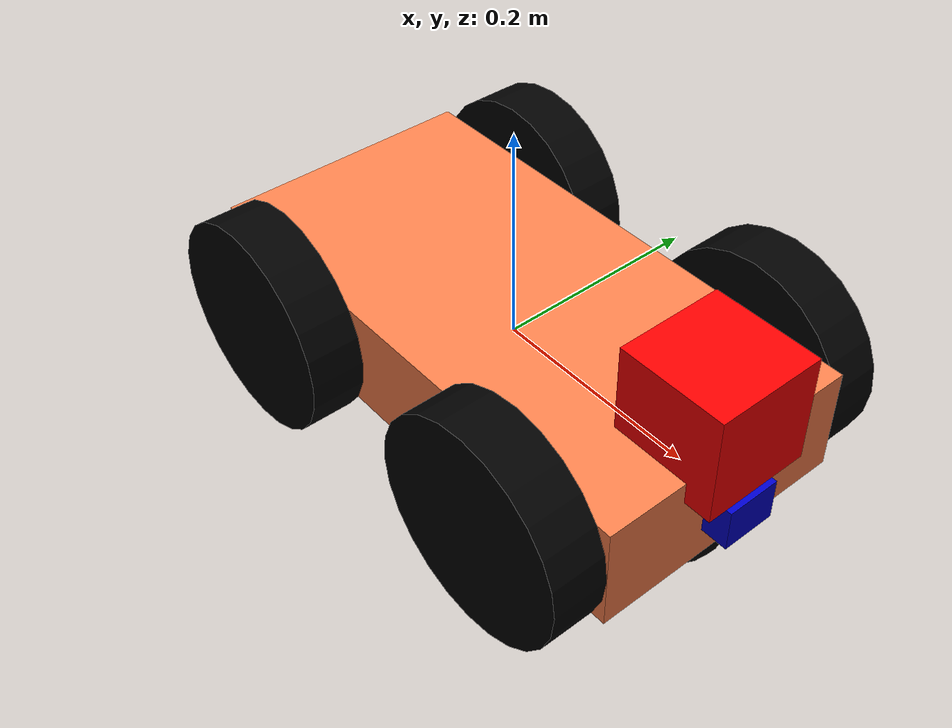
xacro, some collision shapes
<?xml version="1.0" ?>
<robot name="Robo4" xmlns:xacro="http://www.ros.org/wiki/xacro">

  <material name="blue">
    <color rgba="0 0 0.8 1"/>
  </material>
  <material name="black">
    <color rgba="0 0 0 1"/>
  </material>
  <material name="orange">
    <color rgba="1 0.5 0.3 1"/>
  </material>

  <xacro:include filename="$(find my_robot)/urdf/my_robot.gazebo" />

  <link name="robot_footprint"/>

<joint name="robot_footprint_chassis" type="fixed">
  <origin xyz="0 0 0" rpy="0 0 0" />
  <parent link="robot_footprint"/>
  <child link="chassis"/>
</joint>

  <link name="chassis">
    <pose>0 0 0.2 0 0 0</pose>
    <inertial>
      <mass value="15"/>
      <origin rpy="0 0 0" xyz="0 0 0"/>
      <inertia
       ixx="0.1" ixy="0" ixz="0"
       iyy="0.1" iyz="0"
       izz="0.1"/>
    </inertial>

    <collision name="collision">
      <origin rpy="0 0 0" xyz="0 0 0"/>
      <geometry>
        <box size="0.50 0.25 0.1"/>
      </geometry>
    </collision>

    <visual>
      <origin rpy="0 0 0" xyz="0 0 0"/>
      <geometry>
        <box size="0.50 0.25 0.1"/>
      </geometry>
      <material name="orange"/>
    </visual>

  </link>
  <gazebo reference="chassis">
      <material>Gazebo/Orange</material>
  </gazebo>

<joint name="chassis_front_caster" type="fixed">
  <origin xyz="0 0 0" rpy="0 0 0" />
  <parent link="chassis"/>
  <child link="front_caster"/>
</joint>

<link name="front_caster">
    <inertial>
      <mass value="2"/>
      <origin xyz="0.20 0 -0.05" rpy=" 0 0 0"/>
      <inertia
       ixx="0.01" ixy="0" ixz="0"
       iyy="0.01" iyz="0"
       izz="0.01"/>
    </inertial>
    <collision name='front_caster_collision'>
      <origin xyz="0.20 0 -0.05" rpy=" 0 0 0"/>
      <geometry>
        <sphere radius="0.0499"/>
      </geometry>
    </collision>

    <visual name='front_caster_visual'>
      <origin xyz="0.20 0 -0.05" rpy=" 0 0 0"/>
      <geometry>
        <sphere radius="0.05"/>
      </geometry>
      <material name="black"/>
    </visual>
</link>

<joint name="chassis_back_caster" type="fixed">
  <origin xyz="0 0 0" rpy="0 0 0" />
  <parent link="chassis"/>
  <child link="back_caster"/>
</joint>

<link name="back_caster">
    <inertial>
      <mass value="2"/>
      <origin xyz="-0.20 0 -0.05" rpy=" 0 0 0"/>
      <inertia
       ixx="0.01" ixy="0" ixz="0"
       iyy="0.01" iyz="0"
       izz="0.01"/>
    </inertial>

    <collision name='back_caster_collision'>
      <origin xyz="-0.20 0 -0.05" rpy=" 0 0 0"/>
      <geometry>
        <sphere radius="0.0499"/>
      </geometry>
    </collision>

    <visual name='back_caster_visual'>
      <origin xyz="-0.20 0 -0.05" rpy=" 0 0 0"/>
      <geometry>
        <sphere radius="0.05"/>
      </geometry>
      <material name="black"/>
    </visual>

</link>

  <xacro:property name="wheel_damping" value="0.5" />
  <xacro:property name="wheel_friction" value="0.5" />

  <joint name="left_front" type="continuous">
    <parent link="chassis"/>
    <child link="left_wheel"/>
    <origin xyz="0.15 0.15 0.0" rpy="0 0 0"/>
    <axis xyz="0 1 0"/>
    <limit effort="10000" velocity="1000"/>
    <dynamics damping="${wheel_damping}" friction="${wheel_friction}"/>
  </joint>

  <joint name="right_front" type="continuous">
    <parent link="chassis"/>
    <child link="right_wheel"/>
    <origin xyz="0.15 -0.15 0.0" rpy="0 0 0"/>
    <axis xyz="0 1 0"/>
    <limit effort="10000" velocity="1000"/>
    <dynamics damping="${wheel_damping}" friction="${wheel_friction}"/>
  </joint>

  <joint name="left_rear" type="continuous">
    <parent link="chassis"/>
    <child link="left_rear"/>
    <origin xyz="-0.15 0.15 0.0" rpy="0 0 0"/>
    <axis xyz="0 1 0"/>
    <limit effort="10000" velocity="1000"/>
    <dynamics damping="${wheel_damping}" friction="${wheel_friction}"/>
  </joint>

  <joint name="right_rear" type="continuous">
    <parent link="chassis"/>
    <child link="right_rear"/>
    <origin xyz="-0.15 -0.15 0.0" rpy="0 0 0"/>
    <axis xyz="0 1 0"/>
    <limit effort="10000" velocity="1000"/>
    <dynamics damping="${wheel_damping}" friction="${wheel_friction}"/>
  </joint>

  <xacro:property name="wheel_radius"   value="0.10" />
  <xacro:property name="wheel_width"    value="0.05" />
  <xacro:property name="wheel_mass"     value="5" />
  <xacro:property name="wheel_inertia"  value="${(1/2) * wheel_mass * wheel_radius * wheel_radius }" />
  <!-- "${(1 / 12) * wheel_mass * ( (3 * wheel_radius * wheel_radius) + (wheel_width * wheel_width ) ) }" -->
  <xacro:property name="wheel_ixx"   value="0.03" />
  <xacro:property name="wheel_iyy"   value="${wheel_inertia}" />
  <xacro:property name="wheel_izz"   value="0.03" />

  <link name="left_wheel">
    <inertial>
      <mass value="${wheel_mass}"/>
      <origin xyz="0.0 0 0" rpy=" 0 1.5707 1.5707"/>
      <inertia
       ixx="${wheel_ixx}" ixy="0" ixz="0"
       iyy="${wheel_iyy}" iyz="0"
       izz="${wheel_izz}"/>
    </inertial>
    <collision name="collision">
      <origin xyz="0.0 0 0" rpy=" 0 1.5707 1.5707"/>
      <geometry>
        <cylinder length="${wheel_width}" radius="${wheel_radius}"/>
      </geometry>
    </collision>
    <visual>
      <origin xyz="0.0 0 0" rpy=" 0 1.5707 1.5707"/>
      <geometry>
        <cylinder length="${wheel_width}" radius="${wheel_radius}"/>
      </geometry>
      <material name="black"/>
    </visual>
  </link>
  <gazebo reference="left_wheel">
      <material>Gazebo/Black</material>
  </gazebo>

  <link name="right_wheel">
    <inertial>
      <mass value="${wheel_mass}"/>
      <origin xyz="0.0 0 0" rpy=" 0 1.5707 1.5707"/>
      <inertia
       ixx="${wheel_ixx}" ixy="0" ixz="0"
       iyy="${wheel_iyy}" iyz="0"
       izz="${wheel_izz}"/>
    </inertial>
    <collision name="collision">
      <origin xyz="0.0 0 0" rpy=" 0 1.5707 1.5707"/>
      <geometry>
        <cylinder length="${wheel_width}" radius="${wheel_radius}"/>
      </geometry>
    </collision>
    <visual>
      <origin xyz="0.0 0 0" rpy=" 0 1.5707 1.5707"/>
      <geometry>
        <cylinder length="${wheel_width}" radius="${wheel_radius}"/>
      </geometry>
      <material name="black"/>
    </visual>
  </link>
  <gazebo reference="right_wheel">
      <material>Gazebo/Black</material>
  </gazebo>

  <link name="left_rear">
    <inertial>
      <mass value="${wheel_mass}"/>
      <origin xyz="0.0 0 0" rpy=" 0 1.5707 1.5707"/>
      <inertia
       ixx="${wheel_ixx}" ixy="0" ixz="0"
       iyy="${wheel_iyy}" iyz="0"
       izz="${wheel_izz}"/>
    </inertial>
    <collision name="collision">
      <origin xyz="0.0 0 0" rpy=" 0 1.5707 1.5707"/>
      <geometry>
        <cylinder length="${wheel_width}" radius="${wheel_radius}"/>
      </geometry>
    </collision>
    <visual>
      <origin xyz="0.0 0 0" rpy=" 0 1.5707 1.5707"/>
      <geometry>
        <cylinder length="${wheel_width}" radius="${wheel_radius}"/>
      </geometry>
      <material name="black"/>
    </visual>
  </link>
  <gazebo reference="left_rear">
      <material>Gazebo/Black</material>
  </gazebo>

  <link name="right_rear">
    <inertial>
      <mass value="${wheel_mass}"/>
      <origin xyz="0.0 0 0" rpy=" 0 1.5707 1.5707"/>
      <inertia
       ixx="${wheel_ixx}" ixy="0" ixz="0"
       iyy="${wheel_iyy}" iyz="0"
       izz="${wheel_izz}"/>
    </inertial>
    <collision name="collision">
      <origin xyz="0.0 0 0" rpy=" 0 1.5707 1.5707"/>
      <geometry>
        <cylinder length="${wheel_width}" radius="${wheel_radius}"/>
      </geometry>
    </collision>
    <visual>
      <origin xyz="0.0 0 0" rpy=" 0 1.5707 1.5707"/>
      <geometry>
        <cylinder length="${wheel_width}" radius="${wheel_radius}"/>
      </geometry>
      <material name="black"/>
    </visual>
  </link>
  <gazebo reference="right_rear">
      <material>Gazebo/Black</material>
  </gazebo>

  <link name="camera">
    <inertial>
      <origin xyz="0.0 0.0 0.0" rpy="0.0 0.0 0.0"/>
      <mass value="0.1"/>
      <inertia ixx="1e-6" ixy="0" ixz="0" iyy="1e-6" iyz="0" izz="1e-6"/>
    </inertial>
    <visual name="camera_visual">
      <origin xyz="0.0 0.0 0.0" rpy="0.0 0.0 0.0"/>
      <geometry>
        <box size="0.05 0.05 0.04"/>
      </geometry>
      <material name="blue"/>
    </visual>
    <collision name="camera_collision">
      <origin xyz="0.0 0.0 0.0" rpy="0.0 0.0 0.0"/>
      <geometry>
        <box size="0.05 0.05 0.04"/>
      </geometry>
    </collision>
  </link>

    <joint name="camera_optical_joint" type="fixed">
    <origin xyz="0 0 0" rpy="-1.5707 0 -1.5707"/>
    <parent link="camera"/>
    <child link="camera_link_optical"/>
  </joint>

  <link name="camera_link_optical">
  </link>

  <joint name="camera_joint" type="fixed">
    <origin xyz="0.25 0.0 0.0" rpy="0.0 0.0 0.0"/>
    <child link="camera"/>
    <parent link="chassis"/>
    <axis xyz="0 1 0" rpy="0 0 0"/>
  </joint>

  <joint name="hokuyo_joint" type="fixed">
    <origin xyz="0.225 0.0 0.08" rpy="0.0 0.0 0.0"/>
    <parent link="chassis"/>
    <child link="hokuyo"/>
    <axis xyz="0 1 0"/>
  </joint>

  <link name="hokuyo">
    <inertial>
      <origin xyz="0.0 0.0 0.0" rpy="0.0 0.0 0.0"/>
      <mass value="1e-5"/>
      <inertia ixx="1e-6" ixy="0" ixz="0" iyy="1e-6" iyz="0" izz="1e-6"/>
    </inertial>

    <visual name="hokuyo_visual">
      <origin xyz="0.0 0.0 0.0" rpy="0.0 0.0 0.0"/>
      <geometry>
        <mesh filename="package://my_robot/meshes/hokuyo.dae"/>
      </geometry>
      <material name="">
        <color rgba="1.0 0.0 0.0 1.0"/>
        <texture filename=""/>
      </material>
    </visual>

    <collision name="hokuyo_collision">
      <origin xyz="0.0 0.0 0.0" rpy="0.0 0.0 0.0"/>
      <geometry>
        <box size="0.1 0.1 0.1"/>
      </geometry>
    </collision>
  </link>

  <gazebo reference="camera">
      <material>Gazebo/Blue</material>
  </gazebo>

</robot>
